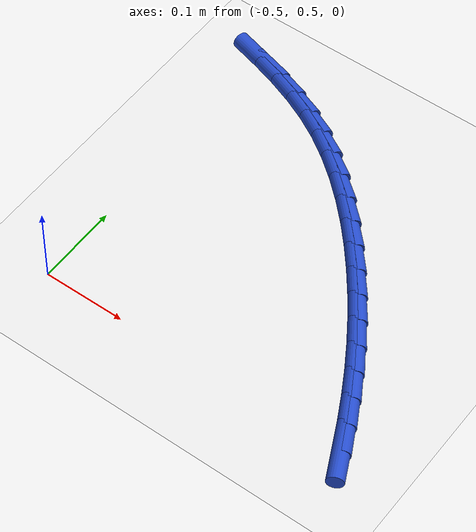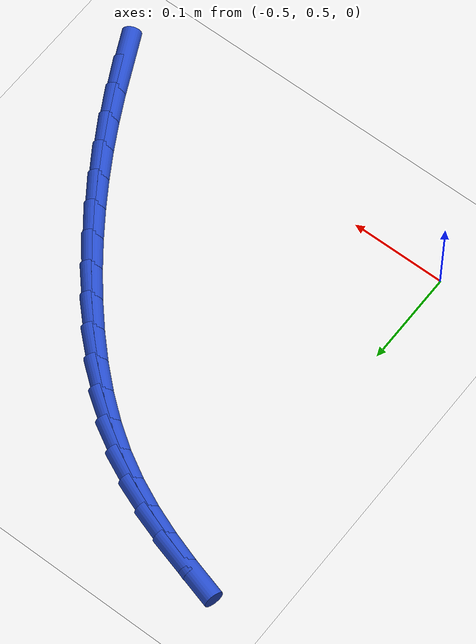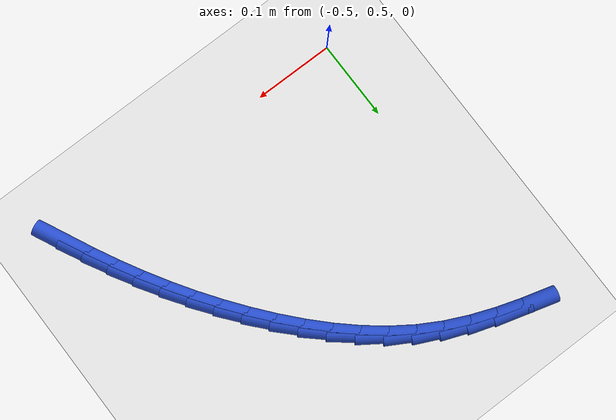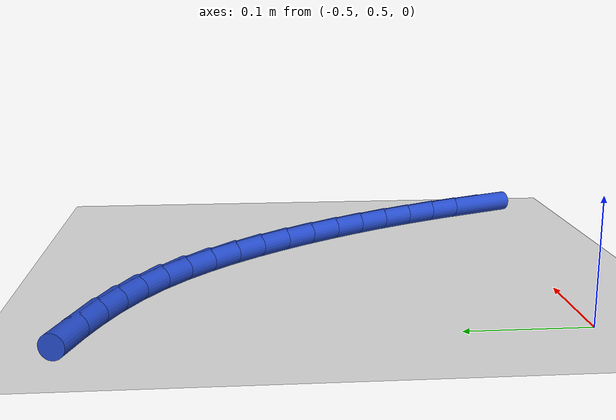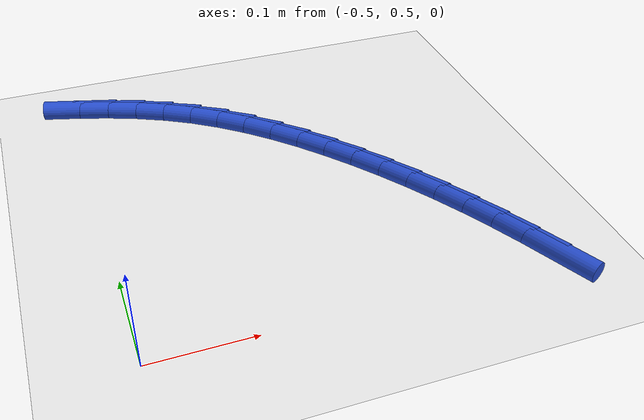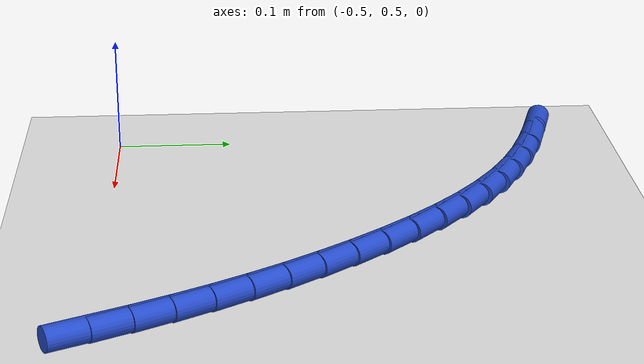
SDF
<sdf version="1.6">
 <world name="default">
  <model name="ground_plane">
   <static>1</static>
   <link name="link">
    <collision name="collision">
     <geometry><plane><normal>0 0 1</normal><size>100 100</size></plane></geometry>
     <surface><friction><ode><mu>100</mu><mu2>50</mu2></ode></friction></surface>
    </collision>
    <visual name="visual">
     <cast_shadows>0</cast_shadows>
     <geometry><plane><normal>0 0 1</normal><size>100 100</size></plane></geometry>
     <material>
      <script><uri>file://media/materials/scripts/gazebo.material</uri><name>Gazebo/WhiteGlow</name></script>
     </material>
    </visual>
   </link>
  </model>
  <model name="line">
   <link name="link_16">
    <pose>-0.11852244585417335 0.5017000187055887 0.01 0 1.57 -1.1243385240954376</pose>
    <collision name="collision">
     <geometry><cylinder><radius>0.01</radius><length>0.08</length></cylinder></geometry>
    </collision>
    <visual name="visual">
     <material>
      <script><name>Gazebo/Blue</name><uri>file://media/materials/scripts/gazebo.material</uri></script>
     </material>
     <geometry><cylinder><radius>0.01</radius><length>0.08</length></cylinder></geometry>
    </visual>
   </link>
   <link name="link_17">
    <pose>-0.1325384773451034 0.5309797637399915 0.01 0 1.57 -1.09403224947397</pose>
    <collision name="collision">
     <geometry><cylinder><radius>0.01</radius><length>0.08</length></cylinder></geometry>
    </collision>
    <visual name="visual">
     <material>
      <script><name>Gazebo/Blue</name><uri>file://media/materials/scripts/gazebo.material</uri></script>
     </material>
     <geometry><cylinder><radius>0.01</radius><length>0.08</length></cylinder></geometry>
    </visual>
   </link>
   <link name="link_18">
    <pose>-0.14743080085955415 0.5598126502138061 0.01 0 1.57 -1.0623658662460087</pose>
    <collision name="collision">
     <geometry><cylinder><radius>0.01</radius><length>0.08</length></cylinder></geometry>
    </collision>
    <visual name="visual">
     <material>
      <script><name>Gazebo/Blue</name><uri>file://media/materials/scripts/gazebo.material</uri></script>
     </material>
     <geometry><cylinder><radius>0.01</radius><length>0.08</length></cylinder></geometry>
    </visual>
   </link>
   <link name="link_19">
    <pose>-0.16322910360873055 0.5881605876853642 0.01 0 1.57 -1.0293460573031858</pose>
    <collision name="collision">
     <geometry><cylinder><radius>0.01</radius><length>0.08</length></cylinder></geometry>
    </collision>
    <visual name="visual">
     <material>
      <script><name>Gazebo/Blue</name><uri>file://media/materials/scripts/gazebo.material</uri></script>
     </material>
     <geometry><cylinder><radius>0.01</radius><length>0.08</length></cylinder></geometry>
    </visual>
   </link>
   <link name="link_20">
    <pose>-0.17996307280383744 0.6159854857129972 0.01 0 1.57 -0.9949918411005917</pose>
    <collision name="collision">
     <geometry><cylinder><radius>0.01</radius><length>0.08</length></cylinder></geometry>
    </collision>
    <visual name="visual">
     <material>
      <script><name>Gazebo/Blue</name><uri>file://media/materials/scripts/gazebo.material</uri></script>
     </material>
     <geometry><cylinder><radius>0.01</radius><length>0.08</length></cylinder></geometry>
    </visual>
   </link>
   <link name="link_21">
    <pose>-0.19766239565607988 0.643249253855037 0.01 0 1.57 -0.9593362793171075</pose>
    <collision name="collision">
     <geometry><cylinder><radius>0.01</radius><length>0.08</length></cylinder></geometry>
    </collision>
    <visual name="visual">
     <material>
      <script><name>Gazebo/Blue</name><uri>file://media/materials/scripts/gazebo.material</uri></script>
     </material>
     <geometry><cylinder><radius>0.01</radius><length>0.08</length></cylinder></geometry>
    </visual>
   </link>
   <link name="link_22">
    <pose>-0.21635675937666282 0.669913801669815 0.01 0 1.57 -0.9224280154016387</pose>
    <collision name="collision">
     <geometry><cylinder><radius>0.01</radius><length>0.08</length></cylinder></geometry>
    </collision>
    <visual name="visual">
     <material>
      <script><name>Gazebo/Blue</name><uri>file://media/materials/scripts/gazebo.material</uri></script>
     </material>
     <geometry><cylinder><radius>0.01</radius><length>0.08</length></cylinder></geometry>
    </visual>
   </link>
   <link name="link_23">
    <pose>-0.23607585117679114 0.695941038715663 0.01 0 1.57 -0.8841942127554209</pose>
    <collision name="collision">
     <geometry><cylinder><radius>0.01</radius><length>0.08</length></cylinder></geometry>
    </collision>
    <visual name="visual">
     <material>
      <script><name>Gazebo/Blue</name><uri>file://media/materials/scripts/gazebo.material</uri></script>
     </material>
     <geometry><cylinder><radius>0.01</radius><length>0.08</length></cylinder></geometry>
    </visual>
   </link>
   <link name="link_24">
    <pose>-0.2568493046668854 0.7212856577965792 0.01 0 1.57 -0.8420285285298341</pose>
    <collision name="collision">
     <geometry><cylinder><radius>0.01</radius><length>0.08</length></cylinder></geometry>
    </collision>
    <visual name="visual">
     <material>
      <script><name>Gazebo/Blue</name><uri>file://media/materials/scripts/gazebo.material</uri></script>
     </material>
     <geometry><cylinder><radius>0.01</radius><length>0.08</length></cylinder></geometry>
    </visual>
   </link>
   <link name="link_25">
    <pose>-0.27870576432729105 0.7457691762635011 0.01 0 1.57 -0.7931644576735281</pose>
    <collision name="collision">
     <geometry><cylinder><radius>0.01</radius><length>0.08</length></cylinder></geometry>
    </collision>
    <visual name="visual">
     <material>
      <script><name>Gazebo/Blue</name><uri>file://media/materials/scripts/gazebo.material</uri></script>
     </material>
     <geometry><cylinder><radius>0.01</radius><length>0.08</length></cylinder></geometry>
    </visual>
   </link>
   <link name="link_26">
    <pose>-0.30167300449786566 0.7690959566495658 0.01 0 1.57 -0.7368165278572465</pose>
    <collision name="collision">
     <geometry><cylinder><radius>0.01</radius><length>0.08</length></cylinder></geometry>
    </collision>
    <visual name="visual">
     <material>
      <script><name>Gazebo/Blue</name><uri>file://media/materials/scripts/gazebo.material</uri></script>
     </material>
     <geometry><cylinder><radius>0.01</radius><length>0.08</length></cylinder></geometry>
    </visual>
   </link>
   <link name="link_27">
    <pose>-0.3257787698382209 0.7909663653702165 0.01 0 1.57 -0.6722454013185253</pose>
    <collision name="collision">
     <geometry><cylinder><radius>0.01</radius><length>0.08</length></cylinder></geometry>
    </collision>
    <visual name="visual">
     <material>
      <script><name>Gazebo/Blue</name><uri>file://media/materials/scripts/gazebo.material</uri></script>
     </material>
     <geometry><cylinder><radius>0.01</radius><length>0.08</length></cylinder></geometry>
    </visual>
   </link>
   <link name="link_28">
    <pose>-0.3510508050079685 0.8110807688408971 0.01 0 1.57 -0.5987729725593101</pose>
    <collision name="collision">
     <geometry><cylinder><radius>0.01</radius><length>0.08</length></cylinder></geometry>
    </collision>
    <visual name="visual">
     <material>
      <script><name>Gazebo/Blue</name><uri>file://media/materials/scripts/gazebo.material</uri></script>
     </material>
     <geometry><cylinder><radius>0.01</radius><length>0.08</length></cylinder></geometry>
    </visual>
   </link>
   <link name="link_29">
    <pose>-0.37751685466671964 0.8291395334770513 0.01 0 1.57 -0.5163343591205413</pose>
    <collision name="collision">
     <geometry><cylinder><radius>0.01</radius><length>0.08</length></cylinder></geometry>
    </collision>
    <visual name="visual">
     <material>
      <script><name>Gazebo/Blue</name><uri>file://media/materials/scripts/gazebo.material</uri></script>
     </material>
     <geometry><cylinder><radius>0.01</radius><length>0.08</length></cylinder></geometry>
    </visual>
   </link>
   <link name="link_30">
    <pose>-0.4052007445364867 0.8448558069188962 0.01 0 1.57 -0.43539038235903105</pose>
    <collision name="collision">
     <geometry><cylinder><radius>0.01</radius><length>0.08</length></cylinder></geometry>
    </collision>
    <visual name="visual">
     <material>
      <script><name>Gazebo/Blue</name><uri>file://media/materials/scripts/gazebo.material</uri></script>
     </material>
     <geometry><cylinder><radius>0.01</radius><length>0.08</length></cylinder></geometry>
    </visual>
   </link>
   <link name="link_31">
    <pose>-0.4340275169077495 0.8582649091327313 0.01 0 1.57 -0.367697042779744</pose>
    <collision name="collision">
     <geometry><cylinder><radius>0.01</radius><length>0.08</length></cylinder></geometry>
    </collision>
    <visual name="visual">
     <material>
      <script><name>Gazebo/Blue</name><uri>file://media/materials/scripts/gazebo.material</uri></script>
     </material>
     <geometry><cylinder><radius>0.01</radius><length>0.08</length></cylinder></geometry>
    </visual>
   </link>
   <link name="link_32">
    <pose>-0.4638183731370973 0.869740826951312 0.01 0 1.57 -0.31414786341790646</pose>
    <collision name="collision">
     <geometry><cylinder><radius>0.01</radius><length>0.08</length></cylinder></geometry>
    </collision>
    <visual name="visual">
     <material>
      <script><name>Gazebo/Blue</name><uri>file://media/materials/scripts/gazebo.material</uri></script>
     </material>
     <geometry><cylinder><radius>0.01</radius><length>0.08</length></cylinder></geometry>
    </visual>
   </link>
   <link name="link_33">
    <pose>-0.4943895833524727 0.8796736299186203 0.01 0 1.57 -0.2745778383771173</pose>
    <collision name="collision">
     <geometry><cylinder><radius>0.01</radius><length>0.08</length></cylinder></geometry>
    </collision>
    <visual name="visual">
     <material>
      <script><name>Gazebo/Blue</name><uri>file://media/materials/scripts/gazebo.material</uri></script>
     </material>
     <geometry><cylinder><radius>0.01</radius><length>0.08</length></cylinder></geometry>
    </visual>
   </link>
  </model>
 </world>
</sdf>
